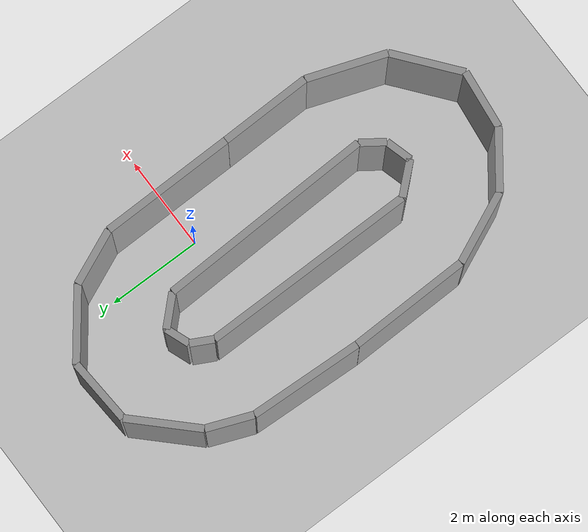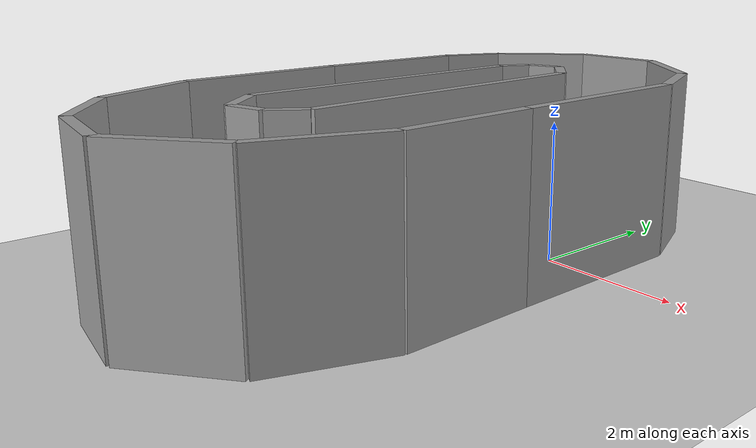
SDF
<sdf version='1.6'>
    <world name='default'>
      <light name='sun' type='directional'>
        <cast_shadows>1</cast_shadows>
        <pose frame=''>0 0 10 0 -0 0</pose>
        <diffuse>0.8 0.8 0.8 1</diffuse>
        <specular>0.2 0.2 0.2 1</specular>
        <attenuation>
          <range>1000</range>
          <constant>0.9</constant>
          <linear>0.01</linear>
          <quadratic>0.001</quadratic>
        </attenuation>
        <direction>-0.5 0.1 -0.9</direction>
      </light>
      <model name='ground_plane'>
        <static>1</static>
        <link name='link'>
          <collision name='collision'>
            <geometry>
              <plane>
                <normal>0 0 1</normal>
                <size>100 100</size>
              </plane>
            </geometry>
            <surface>
              <friction>
                <ode>
                  <mu>100</mu>
                  <mu2>50</mu2>
                </ode>
                <torsional>
                  <ode/>
                </torsional>
              </friction>
              <contact>
                <ode/>
              </contact>
              <bounce/>
            </surface>
            <max_contacts>10</max_contacts>
          </collision>
          <visual name='visual'>
            <cast_shadows>0</cast_shadows>
            <geometry>
              <plane>
                <normal>0 0 1</normal>
                <size>100 100</size>
              </plane>
            </geometry>
            <material>
              <script>
                <uri>file://media/materials/scripts/gazebo.material</uri>
                <name>Gazebo/Grey</name>
              </script>
            </material>
          </visual>
          <self_collide>0</self_collide>
          <enable_wind>0</enable_wind>
          <kinematic>0</kinematic>
        </link>
      </model>
      <gravity>0 0 -9.8</gravity>
      <magnetic_field>6e-06 2.3e-05 -4.2e-05</magnetic_field>
      <atmosphere type='adiabatic'/>
      <physics name='default_physics' default='0' type='ode'>
        <max_step_size>0.001</max_step_size>
        <real_time_factor>1</real_time_factor>
        <real_time_update_rate>1000</real_time_update_rate>
      </physics>
      <scene>
        <ambient>0.4 0.4 0.4 1</ambient>
        <background>0.7 0.7 0.7 1</background>
        <shadows>1</shadows>
      </scene>
      <wind/>
      <spherical_coordinates>
        <surface_model>EARTH_WGS84</surface_model>
        <latitude_deg>0</latitude_deg>
        <longitude_deg>0</longitude_deg>
        <elevation>0</elevation>
        <heading_deg>0</heading_deg>
      </spherical_coordinates>
      <model name='track2'>
        <pose frame=''>0 0 0 0 -0 0</pose>
        <link name='wall_000'>
                <collision name='wall_000_Collision'>
                <geometry>
                    <box>
                    <size>1.195634 0.15 2.5</size>
                    </box>
                </geometry>
                <pose frame=''>0 0 1.25 0 -0 0</pose>
                <max_contacts>10</max_contacts>
                <surface>
                    <contact>
                    <ode/>
                    </contact>
                    <bounce/>
                    <friction>
                    <torsional>
                        <ode/>
                    </torsional>
                    <ode/>
                    </friction>
                </surface>
                </collision>
                <visual name='wall_000_Visual'>
                <pose frame=''>0 0 1.25 0 -0 0</pose>
                <geometry>
                    <box>
                    <size>1.195634 0.15 2.5</size>
                    </box>
                </geometry>
                <material>
                    <script>
                    <uri>file://media/materials/scripts/gazebo.material</uri>
                    <name>Gazebo/Grey</name>
                    </script>
                    <ambient>1 1 1 1</ambient>
                </material>
                <meta>
                    <layer>0</layer>
                </meta>
                </visual>
                <pose frame=''>0.586740 1.912500 0 0 -0 -1.157576</pose>
                <self_collide>0</self_collide>
                <enable_wind>0</enable_wind>
                <kinematic>0</kinematic>
            </link>
            <link name='wall_001'>
                <collision name='wall_001_Collision'>
                <geometry>
                    <box>
                    <size>1.548632 0.15 2.5</size>
                    </box>
                </geometry>
                <pose frame=''>0 0 1.25 0 -0 0</pose>
                <max_contacts>10</max_contacts>
                <surface>
                    <contact>
                    <ode/>
                    </contact>
                    <bounce/>
                    <friction>
                    <torsional>
                        <ode/>
                    </torsional>
                    <ode/>
                    </friction>
                </surface>
                </collision>
                <visual name='wall_001_Visual'>
                <pose frame=''>0 0 1.25 0 -0 0</pose>
                <geometry>
                    <box>
                    <size>1.548632 0.15 2.5</size>
                    </box>
                </geometry>
                <material>
                    <script>
                    <uri>file://media/materials/scripts/gazebo.material</uri>
                    <name>Gazebo/Grey</name>
                    </script>
                    <ambient>1 1 1 1</ambient>
                </material>
                <meta>
                    <layer>0</layer>
                </meta>
                </visual>
                <pose frame=''>-0.266760 2.932500 0 0 -0 -0.656333</pose>
                <self_collide>0</self_collide>
                <enable_wind>0</enable_wind>
                <kinematic>0</kinematic>
            </link>
            <link name='wall_002'>
                <collision name='wall_002_Collision'>
                <geometry>
                    <box>
                    <size>1.362576 0.15 2.5</size>
                    </box>
                </geometry>
                <pose frame=''>0 0 1.25 0 -0 0</pose>
                <max_contacts>10</max_contacts>
                <surface>
                    <contact>
                    <ode/>
                    </contact>
                    <bounce/>
                    <friction>
                    <torsional>
                        <ode/>
                    </torsional>
                    <ode/>
                    </friction>
                </surface>
                </collision>
                <visual name='wall_002_Visual'>
                <pose frame=''>0 0 1.25 0 -0 0</pose>
                <geometry>
                    <box>
                    <size>1.362576 0.15 2.5</size>
                    </box>
                </geometry>
                <material>
                    <script>
                    <uri>file://media/materials/scripts/gazebo.material</uri>
                    <name>Gazebo/Grey</name>
                    </script>
                    <ambient>1 1 1 1</ambient>
                </material>
                <meta>
                    <layer>0</layer>
                </meta>
                </visual>
                <pose frame=''>-1.560000 3.360000 0 0 -0 0.066100</pose>
                <self_collide>0</self_collide>
                <enable_wind>0</enable_wind>
                <kinematic>0</kinematic>
            </link>
            <link name='wall_003'>
                <collision name='wall_003_Collision'>
                <geometry>
                    <box>
                    <size>1.558364 0.15 2.5</size>
                    </box>
                </geometry>
                <pose frame=''>0 0 1.25 0 -0 0</pose>
                <max_contacts>10</max_contacts>
                <surface>
                    <contact>
                    <ode/>
                    </contact>
                    <bounce/>
                    <friction>
                    <torsional>
                        <ode/>
                    </torsional>
                    <ode/>
                    </friction>
                </surface>
                </collision>
                <visual name='wall_003_Visual'>
                <pose frame=''>0 0 1.25 0 -0 0</pose>
                <geometry>
                    <box>
                    <size>1.558364 0.15 2.5</size>
                    </box>
                </geometry>
                <material>
                    <script>
                    <uri>file://media/materials/scripts/gazebo.material</uri>
                    <name>Gazebo/Grey</name>
                    </script>
                    <ambient>1 1 1 1</ambient>
                </material>
                <meta>
                    <layer>0</layer>
                </meta>
                </visual>
                <pose frame=''>-2.786700 2.760000 0 0 -0 0.792749</pose>
                <self_collide>0</self_collide>
                <enable_wind>0</enable_wind>
                <kinematic>0</kinematic>
            </link>
            <link name='wall_004'>
                <collision name='wall_004_Collision'>
                <geometry>
                    <box>
                    <size>0.983273 0.15 2.5</size>
                    </box>
                </geometry>
                <pose frame=''>0 0 1.25 0 -0 0</pose>
                <max_contacts>10</max_contacts>
                <surface>
                    <contact>
                    <ode/>
                    </contact>
                    <bounce/>
                    <friction>
                    <torsional>
                        <ode/>
                    </torsional>
                    <ode/>
                    </friction>
                </surface>
                </collision>
                <visual name='wall_004_Visual'>
                <pose frame=''>0 0 1.25 0 -0 0</pose>
                <geometry>
                    <box>
                    <size>0.983273 0.15 2.5</size>
                    </box>
                </geometry>
                <material>
                    <script>
                    <uri>file://media/materials/scripts/gazebo.material</uri>
                    <name>Gazebo/Grey</name>
                    </script>
                    <ambient>1 1 1 1</ambient>
                </material>
                <meta>
                    <layer>0</layer>
                </meta>
                </visual>
                <pose frame=''>-3.513600 1.747500 0 0 -0 1.195956</pose>
                <self_collide>0</self_collide>
                <enable_wind>0</enable_wind>
                <kinematic>0</kinematic>
            </link>
            <link name='wall_005'>
                <collision name='wall_005_Collision'>
                <geometry>
                    <box>
                    <size>2.372378 0.15 2.5</size>
                    </box>
                </geometry>
                <pose frame=''>0 0 1.25 0 -0 0</pose>
                <max_contacts>10</max_contacts>
                <surface>
                    <contact>
                    <ode/>
                    </contact>
                    <bounce/>
                    <friction>
                    <torsional>
                        <ode/>
                    </torsional>
                    <ode/>
                    </friction>
                </surface>
                </collision>
                <visual name='wall_005_Visual'>
                <pose frame=''>0 0 1.25 0 -0 0</pose>
                <geometry>
                    <box>
                    <size>2.372378 0.15 2.5</size>
                    </box>
                </geometry>
                <material>
                    <script>
                    <uri>file://media/materials/scripts/gazebo.material</uri>
                    <name>Gazebo/Grey</name>
                    </script>
                    <ambient>1 1 1 1</ambient>
                </material>
                <meta>
                    <layer>0</layer>
                </meta>
                </visual>
                <pose frame=''>-3.746700 0.105000 0 0 -0 1.526016</pose>
                <self_collide>0</self_collide>
                <enable_wind>0</enable_wind>
                <kinematic>0</kinematic>
            </link>
            <link name='wall_006'>
                <collision name='wall_006_Collision'>
                <geometry>
                    <box>
                    <size>2.535562 0.15 2.5</size>
                    </box>
                </geometry>
                <pose frame=''>0 0 1.25 0 -0 0</pose>
                <max_contacts>10</max_contacts>
                <surface>
                    <contact>
                    <ode/>
                    </contact>
                    <bounce/>
                    <friction>
                    <torsional>
                        <ode/>
                    </torsional>
                    <ode/>
                    </friction>
                </surface>
                </collision>
                <visual name='wall_006_Visual'>
                <pose frame=''>0 0 1.25 0 -0 0</pose>
                <geometry>
                    <box>
                    <size>2.535562 0.15 2.5</size>
                    </box>
                </geometry>
                <material>
                    <script>
                    <uri>file://media/materials/scripts/gazebo.material</uri>
                    <name>Gazebo/Grey</name>
                    </script>
                    <ambient>1 1 1 1</ambient>
                </material>
                <meta>
                    <layer>0</layer>
                </meta>
                </visual>
                <pose frame=''>-3.773100 -2.347500 0 0 -0 1.591858</pose>
                <self_collide>0</self_collide>
                <enable_wind>0</enable_wind>
                <kinematic>0</kinematic>
            </link>
            <link name='wall_007'>
                <collision name='wall_007_Collision'>
                <geometry>
                    <box>
                    <size>1.561958 0.15 2.5</size>
                    </box>
                </geometry>
                <pose frame=''>0 0 1.25 0 -0 0</pose>
                <max_contacts>10</max_contacts>
                <surface>
                    <contact>
                    <ode/>
                    </contact>
                    <bounce/>
                    <friction>
                    <torsional>
                        <ode/>
                    </torsional>
                    <ode/>
                    </friction>
                </surface>
                </collision>
                <visual name='wall_007_Visual'>
                <pose frame=''>0 0 1.25 0 -0 0</pose>
                <geometry>
                    <box>
                    <size>1.561958 0.15 2.5</size>
                    </box>
                </geometry>
                <material>
                    <script>
                    <uri>file://media/materials/scripts/gazebo.material</uri>
                    <name>Gazebo/Grey</name>
                    </script>
                    <ambient>1 1 1 1</ambient>
                </material>
                <meta>
                    <layer>0</layer>
                </meta>
                </visual>
                <pose frame=''>-3.426600 -4.327500 0 0 -0 1.992687</pose>
                <self_collide>0</self_collide>
                <enable_wind>0</enable_wind>
                <kinematic>0</kinematic>
            </link>
            <link name='wall_008'>
                <collision name='wall_008_Collision'>
                <geometry>
                    <box>
                    <size>1.280286 0.15 2.5</size>
                    </box>
                </geometry>
                <pose frame=''>0 0 1.25 0 -0 0</pose>
                <max_contacts>10</max_contacts>
                <surface>
                    <contact>
                    <ode/>
                    </contact>
                    <bounce/>
                    <friction>
                    <torsional>
                        <ode/>
                    </torsional>
                    <ode/>
                    </friction>
                </surface>
                </collision>
                <visual name='wall_008_Visual'>
                <pose frame=''>0 0 1.25 0 -0 0</pose>
                <geometry>
                    <box>
                    <size>1.280286 0.15 2.5</size>
                    </box>
                </geometry>
                <material>
                    <script>
                    <uri>file://media/materials/scripts/gazebo.material</uri>
                    <name>Gazebo/Grey</name>
                    </script>
                    <ambient>1 1 1 1</ambient>
                </material>
                <meta>
                    <layer>0</layer>
                </meta>
                </visual>
                <pose frame=''>-2.593500 -5.422500 0 0 -0 2.501185</pose>
                <self_collide>0</self_collide>
                <enable_wind>0</enable_wind>
                <kinematic>0</kinematic>
            </link>
            <link name='wall_009'>
                <collision name='wall_009_Collision'>
                <geometry>
                    <box>
                    <size>1.236135 0.15 2.5</size>
                    </box>
                </geometry>
                <pose frame=''>0 0 1.25 0 -0 0</pose>
                <max_contacts>10</max_contacts>
                <surface>
                    <contact>
                    <ode/>
                    </contact>
                    <bounce/>
                    <friction>
                    <torsional>
                        <ode/>
                    </torsional>
                    <ode/>
                    </friction>
                </surface>
                </collision>
                <visual name='wall_009_Visual'>
                <pose frame=''>0 0 1.25 0 -0 0</pose>
                <geometry>
                    <box>
                    <size>1.236135 0.15 2.5</size>
                    </box>
                </geometry>
                <material>
                    <script>
                    <uri>file://media/materials/scripts/gazebo.material</uri>
                    <name>Gazebo/Grey</name>
                    </script>
                    <ambient>1 1 1 1</ambient>
                </material>
                <meta>
                    <layer>0</layer>
                </meta>
                </visual>
                <pose frame=''>-1.466700 -5.880000 0 0 -0 3.019947</pose>
                <self_collide>0</self_collide>
                <enable_wind>0</enable_wind>
                <kinematic>0</kinematic>
            </link>
            <link name='wall_010'>
                <collision name='wall_010_Collision'>
                <geometry>
                    <box>
                    <size>1.536656 0.15 2.5</size>
                    </box>
                </geometry>
                <pose frame=''>0 0 1.25 0 -0 0</pose>
                <max_contacts>10</max_contacts>
                <surface>
                    <contact>
                    <ode/>
                    </contact>
                    <bounce/>
                    <friction>
                    <torsional>
                        <ode/>
                    </torsional>
                    <ode/>
                    </friction>
                </surface>
                </collision>
                <visual name='wall_010_Visual'>
                <pose frame=''>0 0 1.25 0 -0 0</pose>
                <geometry>
                    <box>
                    <size>1.536656 0.15 2.5</size>
                    </box>
                </geometry>
                <material>
                    <script>
                    <uri>file://media/materials/scripts/gazebo.material</uri>
                    <name>Gazebo/Grey</name>
                    </script>
                    <ambient>1 1 1 1</ambient>
                </material>
                <meta>
                    <layer>0</layer>
                </meta>
                </visual>
                <pose frame=''>-0.253260 -5.475000 0 0 -0 -2.466803</pose>
                <self_collide>0</self_collide>
                <enable_wind>0</enable_wind>
                <kinematic>0</kinematic>
            </link>
            <link name='wall_011'>
                <collision name='wall_011_Collision'>
                <geometry>
                    <box>
                    <size>1.685708 0.15 2.5</size>
                    </box>
                </geometry>
                <pose frame=''>0 0 1.25 0 -0 0</pose>
                <max_contacts>10</max_contacts>
                <surface>
                    <contact>
                    <ode/>
                    </contact>
                    <bounce/>
                    <friction>
                    <torsional>
                        <ode/>
                    </torsional>
                    <ode/>
                    </friction>
                </surface>
                </collision>
                <visual name='wall_011_Visual'>
                <pose frame=''>0 0 1.25 0 -0 0</pose>
                <geometry>
                    <box>
                    <size>1.685708 0.15 2.5</size>
                    </box>
                </geometry>
                <material>
                    <script>
                    <uri>file://media/materials/scripts/gazebo.material</uri>
                    <name>Gazebo/Grey</name>
                    </script>
                    <ambient>1 1 1 1</ambient>
                </material>
                <meta>
                    <layer>0</layer>
                </meta>
                </visual>
                <pose frame=''>0.626640 -4.200000 0 0 -0 -1.909386</pose>
                <self_collide>0</self_collide>
                <enable_wind>0</enable_wind>
                <kinematic>0</kinematic>
            </link>
            <link name='wall_012'>
                <collision name='wall_012_Collision'>
                <geometry>
                    <box>
                    <size>1.935418 0.15 2.5</size>
                    </box>
                </geometry>
                <pose frame=''>0 0 1.25 0 -0 0</pose>
                <max_contacts>10</max_contacts>
                <surface>
                    <contact>
                    <ode/>
                    </contact>
                    <bounce/>
                    <friction>
                    <torsional>
                        <ode/>
                    </torsional>
                    <ode/>
                    </friction>
                </surface>
                </collision>
                <visual name='wall_012_Visual'>
                <pose frame=''>0 0 1.25 0 -0 0</pose>
                <geometry>
                    <box>
                    <size>1.935418 0.15 2.5</size>
                    </box>
                </geometry>
                <material>
                    <script>
                    <uri>file://media/materials/scripts/gazebo.material</uri>
                    <name>Gazebo/Grey</name>
                    </script>
                    <ambient>1 1 1 1</ambient>
                </material>
                <meta>
                    <layer>0</layer>
                </meta>
                </visual>
                <pose frame=''>0.886500 -2.437500 0 0 -0 -1.550024</pose>
                <self_collide>0</self_collide>
                <enable_wind>0</enable_wind>
                <kinematic>0</kinematic>
            </link>
            <link name='wall_013'>
                <collision name='wall_013_Collision'>
                <geometry>
                    <box>
                    <size>2.835277 0.15 2.5</size>
                    </box>
                </geometry>
                <pose frame=''>0 0 1.25 0 -0 0</pose>
                <max_contacts>10</max_contacts>
                <surface>
                    <contact>
                    <ode/>
                    </contact>
                    <bounce/>
                    <friction>
                    <torsional>
                        <ode/>
                    </torsional>
                    <ode/>
                    </friction>
                </surface>
                </collision>
                <visual name='wall_013_Visual'>
                <pose frame=''>0 0 1.25 0 -0 0</pose>
                <geometry>
                    <box>
                    <size>2.835277 0.15 2.5</size>
                    </box>
                </geometry>
                <material>
                    <script>
                    <uri>file://media/materials/scripts/gazebo.material</uri>
                    <name>Gazebo/Grey</name>
                    </script>
                    <ambient>1 1 1 1</ambient>
                </material>
                <meta>
                    <layer>0</layer>
                </meta>
                </visual>
                <pose frame=''>0.846600 -0.052500 0 0 -0 -1.556829</pose>
                <self_collide>0</self_collide>
                <enable_wind>0</enable_wind>
                <kinematic>0</kinematic>
            </link>
            <link name='wall_014'>
                <collision name='wall_014_Collision'>
                <geometry>
                    <box>
                    <size>0.729845 0.15 2.5</size>
                    </box>
                </geometry>
                <pose frame=''>0 0 1.25 0 -0 0</pose>
                <max_contacts>10</max_contacts>
                <surface>
                    <contact>
                    <ode/>
                    </contact>
                    <bounce/>
                    <friction>
                    <torsional>
                        <ode/>
                    </torsional>
                    <ode/>
                    </friction>
                </surface>
                </collision>
                <visual name='wall_014_Visual'>
                <pose frame=''>0 0 1.25 0 -0 0</pose>
                <geometry>
                    <box>
                    <size>0.729845 0.15 2.5</size>
                    </box>
                </geometry>
                <material>
                    <script>
                    <uri>file://media/materials/scripts/gazebo.material</uri>
                    <name>Gazebo/Grey</name>
                    </script>
                    <ambient>1 1 1 1</ambient>
                </material>
                <meta>
                    <layer>0</layer>
                </meta>
                </visual>
                <pose frame=''>-1.119900 1.372500 0 0 -0 -0.802838</pose>
                <self_collide>0</self_collide>
                <enable_wind>0</enable_wind>
                <kinematic>0</kinematic>
            </link>
            <link name='wall_015'>
                <collision name='wall_015_Collision'>
                <geometry>
                    <box>
                    <size>0.512640 0.15 2.5</size>
                    </box>
                </geometry>
                <pose frame=''>0 0 1.25 0 -0 0</pose>
                <max_contacts>10</max_contacts>
                <surface>
                    <contact>
                    <ode/>
                    </contact>
                    <bounce/>
                    <friction>
                    <torsional>
                        <ode/>
                    </torsional>
                    <ode/>
                    </friction>
                </surface>
                </collision>
                <visual name='wall_015_Visual'>
                <pose frame=''>0 0 1.25 0 -0 0</pose>
                <geometry>
                    <box>
                    <size>0.512640 0.15 2.5</size>
                    </box>
                </geometry>
                <material>
                    <script>
                    <uri>file://media/materials/scripts/gazebo.material</uri>
                    <name>Gazebo/Grey</name>
                    </script>
                    <ambient>1 1 1 1</ambient>
                </material>
                <meta>
                    <layer>0</layer>
                </meta>
                </visual>
                <pose frame=''>-1.613400 1.545000 0 0 -0 0.358771</pose>
                <self_collide>0</self_collide>
                <enable_wind>0</enable_wind>
                <kinematic>0</kinematic>
            </link>
            <link name='wall_016'>
                <collision name='wall_016_Collision'>
                <geometry>
                    <box>
                    <size>0.490574 0.15 2.5</size>
                    </box>
                </geometry>
                <pose frame=''>0 0 1.25 0 -0 0</pose>
                <max_contacts>10</max_contacts>
                <surface>
                    <contact>
                    <ode/>
                    </contact>
                    <bounce/>
                    <friction>
                    <torsional>
                        <ode/>
                    </torsional>
                    <ode/>
                    </friction>
                </surface>
                </collision>
                <visual name='wall_016_Visual'>
                <pose frame=''>0 0 1.25 0 -0 0</pose>
                <geometry>
                    <box>
                    <size>0.490574 0.15 2.5</size>
                    </box>
                </geometry>
                <material>
                    <script>
                    <uri>file://media/materials/scripts/gazebo.material</uri>
                    <name>Gazebo/Grey</name>
                    </script>
                    <ambient>1 1 1 1</ambient>
                </material>
                <meta>
                    <layer>0</layer>
                </meta>
                </visual>
                <pose frame=''>-1.966800 1.237500 0 0 -0 1.090192</pose>
                <self_collide>0</self_collide>
                <enable_wind>0</enable_wind>
                <kinematic>0</kinematic>
            </link>
            <link name='wall_017'>
                <collision name='wall_017_Collision'>
                <geometry>
                    <box>
                    <size>4.515021 0.15 2.5</size>
                    </box>
                </geometry>
                <pose frame=''>0 0 1.25 0 -0 0</pose>
                <max_contacts>10</max_contacts>
                <surface>
                    <contact>
                    <ode/>
                    </contact>
                    <bounce/>
                    <friction>
                    <torsional>
                        <ode/>
                    </torsional>
                    <ode/>
                    </friction>
                </surface>
                </collision>
                <visual name='wall_017_Visual'>
                <pose frame=''>0 0 1.25 0 -0 0</pose>
                <geometry>
                    <box>
                    <size>4.515021 0.15 2.5</size>
                    </box>
                </geometry>
                <material>
                    <script>
                    <uri>file://media/materials/scripts/gazebo.material</uri>
                    <name>Gazebo/Grey</name>
                    </script>
                    <ambient>1 1 1 1</ambient>
                </material>
                <meta>
                    <layer>0</layer>
                </meta>
                </visual>
                <pose frame=''>-2.073300 -1.237500 0 0 -0 1.573853</pose>
                <self_collide>0</self_collide>
                <enable_wind>0</enable_wind>
                <kinematic>0</kinematic>
            </link>
            <link name='wall_018'>
                <collision name='wall_018_Collision'>
                <geometry>
                    <box>
                    <size>0.762457 0.15 2.5</size>
                    </box>
                </geometry>
                <pose frame=''>0 0 1.25 0 -0 0</pose>
                <max_contacts>10</max_contacts>
                <surface>
                    <contact>
                    <ode/>
                    </contact>
                    <bounce/>
                    <friction>
                    <torsional>
                        <ode/>
                    </torsional>
                    <ode/>
                    </friction>
                </surface>
                </collision>
                <visual name='wall_018_Visual'>
                <pose frame=''>0 0 1.25 0 -0 0</pose>
                <geometry>
                    <box>
                    <size>0.762457 0.15 2.5</size>
                    </box>
                </geometry>
                <material>
                    <script>
                    <uri>file://media/materials/scripts/gazebo.material</uri>
                    <name>Gazebo/Grey</name>
                    </script>
                    <ambient>1 1 1 1</ambient>
                </material>
                <meta>
                    <layer>0</layer>
                </meta>
                </visual>
                <pose frame=''>-1.813200 -3.780000 0 0 -0 2.297177</pose>
                <self_collide>0</self_collide>
                <enable_wind>0</enable_wind>
                <kinematic>0</kinematic>
            </link>
            <link name='wall_019'>
                <collision name='wall_019_Collision'>
                <geometry>
                    <box>
                    <size>0.554090 0.15 2.5</size>
                    </box>
                </geometry>
                <pose frame=''>0 0 1.25 0 -0 0</pose>
                <max_contacts>10</max_contacts>
                <surface>
                    <contact>
                    <ode/>
                    </contact>
                    <bounce/>
                    <friction>
                    <torsional>
                        <ode/>
                    </torsional>
                    <ode/>
                    </friction>
                </surface>
                </collision>
                <visual name='wall_019_Visual'>
                <pose frame=''>0 0 1.25 0 -0 0</pose>
                <geometry>
                    <box>
                    <size>0.554090 0.15 2.5</size>
                    </box>
                </geometry>
                <material>
                    <script>
                    <uri>file://media/materials/scripts/gazebo.material</uri>
                    <name>Gazebo/Grey</name>
                    </script>
                    <ambient>1 1 1 1</ambient>
                </material>
                <meta>
                    <layer>0</layer>
                </meta>
                </visual>
                <pose frame=''>-1.293300 -3.990000 0 0 -0 -2.867458</pose>
                <self_collide>0</self_collide>
                <enable_wind>0</enable_wind>
                <kinematic>0</kinematic>
            </link>
            <link name='wall_020'>
                <collision name='wall_020_Collision'>
                <geometry>
                    <box>
                    <size>0.552062 0.15 2.5</size>
                    </box>
                </geometry>
                <pose frame=''>0 0 1.25 0 -0 0</pose>
                <max_contacts>10</max_contacts>
                <surface>
                    <contact>
                    <ode/>
                    </contact>
                    <bounce/>
                    <friction>
                    <torsional>
                        <ode/>
                    </torsional>
                    <ode/>
                    </friction>
                </surface>
                </collision>
                <visual name='wall_020_Visual'>
                <pose frame=''>0 0 1.25 0 -0 0</pose>
                <geometry>
                    <box>
                    <size>0.552062 0.15 2.5</size>
                    </box>
                </geometry>
                <material>
                    <script>
                    <uri>file://media/materials/scripts/gazebo.material</uri>
                    <name>Gazebo/Grey</name>
                    </script>
                    <ambient>1 1 1 1</ambient>
                </material>
                <meta>
                    <layer>0</layer>
                </meta>
                </visual>
                <pose frame=''>-0.866700 -3.690000 0 0 -0 -2.188645</pose>
                <self_collide>0</self_collide>
                <enable_wind>0</enable_wind>
                <kinematic>0</kinematic>
            </link>
            <link name='wall_021'>
                <collision name='wall_021_Collision'>
                <geometry>
                    <box>
                    <size>4.577783 0.15 2.5</size>
                    </box>
                </geometry>
                <pose frame=''>0 0 1.25 0 -0 0</pose>
                <max_contacts>10</max_contacts>
                <surface>
                    <contact>
                    <ode/>
                    </contact>
                    <bounce/>
                    <friction>
                    <torsional>
                        <ode/>
                    </torsional>
                    <ode/>
                    </friction>
                </surface>
                </collision>
                <visual name='wall_021_Visual'>
                <pose frame=''>0 0 1.25 0 -0 0</pose>
                <geometry>
                    <box>
                    <size>4.577783 0.15 2.5</size>
                    </box>
                </geometry>
                <material>
                    <script>
                    <uri>file://media/materials/scripts/gazebo.material</uri>
                    <name>Gazebo/Grey</name>
                    </script>
                    <ambient>1 1 1 1</ambient>
                </material>
                <meta>
                    <layer>0</layer>
                </meta>
                </visual>
                <pose frame=''>-0.786600 -1.177500 0 0 -0 -1.535925</pose>
                <self_collide>0</self_collide>
                <enable_wind>0</enable_wind>
                <kinematic>0</kinematic>
            </link>
            <static>1</static>
      </model>
      <gui fullscreen='0'>
        <camera name='user_camera'>
          <pose frame=''>-9.88167 -5.87841 72.8661 3.14159 1.57079 3.14159</pose>
          <view_controller>orbit</view_controller>
          <projection_type>perspective</projection_type>
        </camera>
      </gui>
    </world>
  </sdf>
